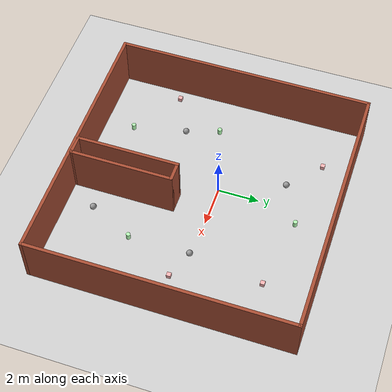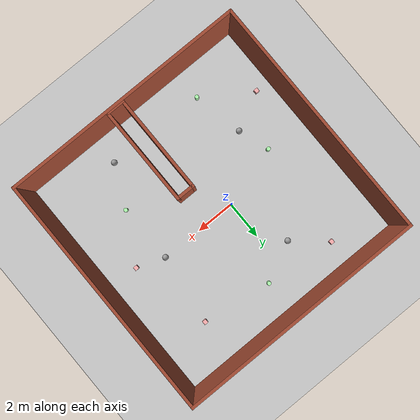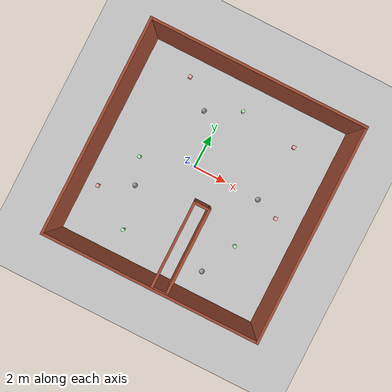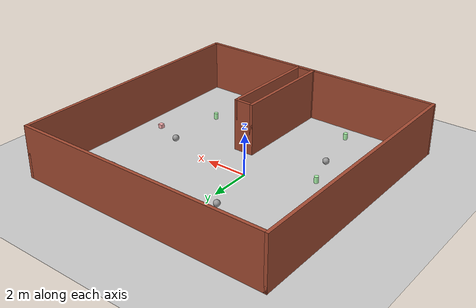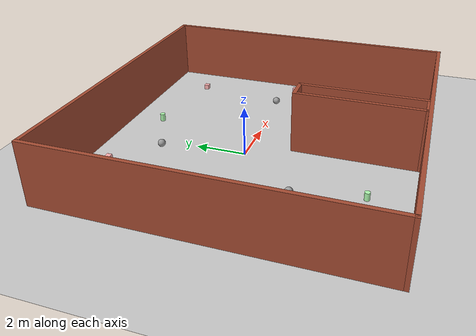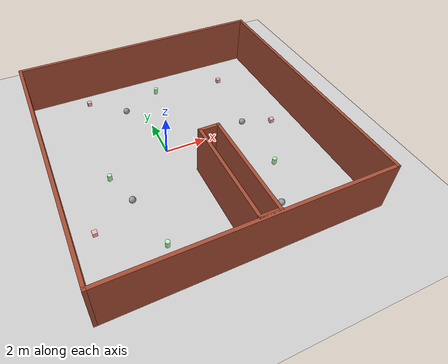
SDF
<sdf version="1.6">
 <world name="default">
  <light name="sun" type="directional">
   <pose>0 0 10 0 -0 0</pose>
   <diffuse>0.8 0.8 0.8 1</diffuse>
   <specular>0.1 0.1 0.1 1</specular>
   <attenuation>
    <range>1000</range>
    <constant>0.9</constant>
    <linear>0.01</linear>
    <quadratic>0.001</quadratic>
   </attenuation>
   <direction>-0.5 0.5 -1</direction>
  </light>
  <model name="ground_plane">
   <static>1</static>
   <link name="link">
    <collision name="collision">
     <geometry><plane><normal>0 0 1</normal><size>100 100</size></plane></geometry>
     <surface><friction><ode><mu>100</mu><mu2>50</mu2></ode></friction></surface>
    </collision>
    <visual name="visual">
     <cast_shadows>0</cast_shadows>
     <geometry><plane><normal>0 0 1</normal><size>100 100</size></plane></geometry>
     <material>
      <script><uri>file://media/materials/scripts/gazebo.material</uri><name>Gazebo/Grey</name></script>
     </material>
    </visual>
   </link>
  </model>
  <gravity>0 0 -9.8</gravity>
  <magnetic_field>6e-06 2.3e-05 -4.2e-05</magnetic_field>
  <atmosphere type="adiabatic"/>
  <physics name="default_physics" default="0" type="ode">
   <max_step_size>0.001</max_step_size>
   <real_time_factor>1</real_time_factor>
   <real_time_update_rate>1000</real_time_update_rate>
  </physics>
  <scene><ambient>0.4 0.4 0.4 1</ambient><background>0.7 0.7 0.7 1</background><shadows>1</shadows></scene>
  <spherical_coordinates>
   <surface_model>EARTH_WGS84</surface_model>
   <latitude_deg>0</latitude_deg>
   <longitude_deg>0</longitude_deg>
   <elevation>0</elevation>
   <heading_deg>0</heading_deg>
  </spherical_coordinates>
  <model name="unit_box_0_1_2">
   <link name="link">
    <inertial>
     <mass>1</mass>
     <inertia>
      <ixx>0.166667</ixx>
      <ixy>0</ixy>
      <ixz>0</ixz>
      <iyy>0.166667</iyy>
      <iyz>0</iyz>
      <izz>0.166667</izz>
     </inertia>
    </inertial>
    <visual name="visual">
     <geometry><box><size>0.2 0.2 0.2</size></box></geometry>
     <material>
      <script><name>Gazebo/Grey</name><uri>file://media/materials/scripts/gazebo.material</uri></script>
      <ambient>1 0.3 0.3 1</ambient>
      <diffuse>1 0.7 0.7 1</diffuse>
      <specular>0.01 0.01 0.01 1</specular>
      <emissive>0 0 0 1</emissive>
      <shader type="vertex"><normal_map>__default__</normal_map></shader>
     </material>
    </visual>
    <collision name="collision">
     <geometry><box><size>1 1 1</size></box></geometry>
     <surface>
      <friction>
       <ode><mu>1</mu><mu2>1</mu2><fdir1>0 0 0</fdir1><slip1>0</slip1><slip2>0</slip2></ode>
       <torsional>
        <coefficient>1</coefficient>
        <patch_radius>0</patch_radius>
        <surface_radius>0</surface_radius>
        <use_patch_radius>1</use_patch_radius>
        <ode><slip>0</slip></ode>
       </torsional>
      </friction>
      <bounce><restitution_coefficient>0</restitution_coefficient><threshold>1e+06</threshold></bounce>
      <contact>
       <collide_without_contact>0</collide_without_contact>
       <collide_without_contact_bitmask>1</collide_without_contact_bitmask>
       <collide_bitmask>1</collide_bitmask>
       <ode>
        <soft_cfm>0</soft_cfm>
        <soft_erp>0.2</soft_erp>
        <kp>1e+13</kp>
        <kd>1</kd>
        <max_vel>0.01</max_vel>
        <min_depth>0</min_depth>
       </ode>
       <bullet>
        <split_impulse>1</split_impulse>
        <split_impulse_penetration_threshold>-0.01</split_impulse_penetration_threshold>
        <soft_cfm>0</soft_cfm>
        <soft_erp>0.2</soft_erp>
        <kp>1e+13</kp>
        <kd>1</kd>
       </bullet>
      </contact>
     </surface>
    </collision>
   </link>
   <static>0</static>
   <pose>5.39737 -0.545213 0.5 0 -0 0</pose>
  </model>
  <model name="unit_box_0_1_2_clone">
   <link name="link">
    <inertial>
     <mass>1</mass>
     <inertia>
      <ixx>0.166667</ixx>
      <ixy>0</ixy>
      <ixz>0</ixz>
      <iyy>0.166667</iyy>
      <iyz>0</iyz>
      <izz>0.166667</izz>
     </inertia>
    </inertial>
    <visual name="visual">
     <geometry><box><size>0.2 0.2 0.2</size></box></geometry>
     <material>
      <script><name>Gazebo/Grey</name><uri>file://media/materials/scripts/gazebo.material</uri></script>
      <ambient>1 0.3 0.3 1</ambient>
      <diffuse>1 0.7 0.7 1</diffuse>
      <specular>0.01 0.01 0.01 1</specular>
      <emissive>0 0 0 1</emissive>
      <shader type="vertex"><normal_map>__default__</normal_map></shader>
     </material>
    </visual>
    <collision name="collision">
     <geometry><box><size>1 1 1</size></box></geometry>
     <surface>
      <friction>
       <ode><mu>1</mu><mu2>1</mu2><fdir1>0 0 0</fdir1><slip1>0</slip1><slip2>0</slip2></ode>
       <torsional>
        <coefficient>1</coefficient>
        <patch_radius>0</patch_radius>
        <surface_radius>0</surface_radius>
        <use_patch_radius>1</use_patch_radius>
        <ode><slip>0</slip></ode>
       </torsional>
      </friction>
      <bounce><restitution_coefficient>0</restitution_coefficient><threshold>1e+06</threshold></bounce>
      <contact>
       <collide_without_contact>0</collide_without_contact>
       <collide_without_contact_bitmask>1</collide_without_contact_bitmask>
       <collide_bitmask>1</collide_bitmask>
       <ode>
        <soft_cfm>0</soft_cfm>
        <soft_erp>0.2</soft_erp>
        <kp>1e+13</kp>
        <kd>1</kd>
        <max_vel>0.01</max_vel>
        <min_depth>0</min_depth>
       </ode>
       <bullet>
        <split_impulse>1</split_impulse>
        <split_impulse_penetration_threshold>-0.01</split_impulse_penetration_threshold>
        <soft_cfm>0</soft_cfm>
        <soft_erp>0.2</soft_erp>
        <kp>1e+13</kp>
        <kd>1</kd>
       </bullet>
      </contact>
     </surface>
    </collision>
   </link>
   <static>0</static>
   <pose>4.49368 3.49888 0.5 0 -0 0</pose>
  </model>
  <model name="unit_box_0_1_2_clone_0">
   <link name="link">
    <inertial>
     <mass>1</mass>
     <inertia>
      <ixx>0.166667</ixx>
      <ixy>0</ixy>
      <ixz>0</ixz>
      <iyy>0.166667</iyy>
      <iyz>0</iyz>
      <izz>0.166667</izz>
     </inertia>
    </inertial>
    <visual name="visual">
     <geometry><box><size>0.2 0.2 0.2</size></box></geometry>
     <material>
      <script><name>Gazebo/Grey</name><uri>file://media/materials/scripts/gazebo.material</uri></script>
      <ambient>1 0.3 0.3 1</ambient>
      <diffuse>1 0.7 0.7 1</diffuse>
      <specular>0.01 0.01 0.01 1</specular>
      <emissive>0 0 0 1</emissive>
      <shader type="vertex"><normal_map>__default__</normal_map></shader>
     </material>
    </visual>
    <collision name="collision">
     <geometry><box><size>1 1 1</size></box></geometry>
     <surface>
      <friction>
       <ode><mu>1</mu><mu2>1</mu2><fdir1>0 0 0</fdir1><slip1>0</slip1><slip2>0</slip2></ode>
       <torsional>
        <coefficient>1</coefficient>
        <patch_radius>0</patch_radius>
        <surface_radius>0</surface_radius>
        <use_patch_radius>1</use_patch_radius>
        <ode><slip>0</slip></ode>
       </torsional>
      </friction>
      <bounce><restitution_coefficient>0</restitution_coefficient><threshold>1e+06</threshold></bounce>
      <contact>
       <collide_without_contact>0</collide_without_contact>
       <collide_without_contact_bitmask>1</collide_without_contact_bitmask>
       <collide_bitmask>1</collide_bitmask>
       <ode>
        <soft_cfm>0</soft_cfm>
        <soft_erp>0.2</soft_erp>
        <kp>1e+13</kp>
        <kd>1</kd>
        <max_vel>0.01</max_vel>
        <min_depth>0</min_depth>
       </ode>
       <bullet>
        <split_impulse>1</split_impulse>
        <split_impulse_penetration_threshold>-0.01</split_impulse_penetration_threshold>
        <soft_cfm>0</soft_cfm>
        <soft_erp>0.2</soft_erp>
        <kp>1e+13</kp>
        <kd>1</kd>
       </bullet>
      </contact>
     </surface>
    </collision>
   </link>
   <static>0</static>
   <pose>-4.41359 -3.42337 0.5 0 -0 0</pose>
  </model>
  <model name="unit_box_0_1_2_clone_1">
   <link name="link">
    <inertial>
     <mass>1</mass>
     <inertia>
      <ixx>0.166667</ixx>
      <ixy>0</ixy>
      <ixz>0</ixz>
      <iyy>0.166667</iyy>
      <iyz>0</iyz>
      <izz>0.166667</izz>
     </inertia>
    </inertial>
    <visual name="visual">
     <geometry><box><size>0.2 0.2 0.2</size></box></geometry>
     <material>
      <script><name>Gazebo/Grey</name><uri>file://media/materials/scripts/gazebo.material</uri></script>
      <ambient>1 0.3 0.3 1</ambient>
      <diffuse>1 0.7 0.7 1</diffuse>
      <specular>0.01 0.01 0.01 1</specular>
      <emissive>0 0 0 1</emissive>
      <shader type="vertex"><normal_map>__default__</normal_map></shader>
     </material>
    </visual>
    <collision name="collision">
     <geometry><box><size>1 1 1</size></box></geometry>
     <surface>
      <friction>
       <ode><mu>1</mu><mu2>1</mu2><fdir1>0 0 0</fdir1><slip1>0</slip1><slip2>0</slip2></ode>
       <torsional>
        <coefficient>1</coefficient>
        <patch_radius>0</patch_radius>
        <surface_radius>0</surface_radius>
        <use_patch_radius>1</use_patch_radius>
        <ode><slip>0</slip></ode>
       </torsional>
      </friction>
      <bounce><restitution_coefficient>0</restitution_coefficient><threshold>1e+06</threshold></bounce>
      <contact>
       <collide_without_contact>0</collide_without_contact>
       <collide_without_contact_bitmask>1</collide_without_contact_bitmask>
       <collide_bitmask>1</collide_bitmask>
       <ode>
        <soft_cfm>0</soft_cfm>
        <soft_erp>0.2</soft_erp>
        <kp>1e+13</kp>
        <kd>1</kd>
        <max_vel>0.01</max_vel>
        <min_depth>0</min_depth>
       </ode>
       <bullet>
        <split_impulse>1</split_impulse>
        <split_impulse_penetration_threshold>-0.01</split_impulse_penetration_threshold>
        <soft_cfm>0</soft_cfm>
        <soft_erp>0.2</soft_erp>
        <kp>1e+13</kp>
        <kd>1</kd>
       </bullet>
      </contact>
     </surface>
    </collision>
   </link>
   <static>0</static>
   <pose>-2.53727 4.40787 0.5 0 -0 0</pose>
  </model>
  <model name="unit_cyclider_1_0">
   <link name="link_0">
    <pose>0 0 0.165143 0 -0 0</pose>
    <inertial>
     <mass>1</mass>
     <inertia><ixx>0.145833</ixx><ixy>0</ixy><ixz>0</ixz><iyy>0.145833</iyy><iyz>0</iyz><izz>0.125</izz></inertia>
    </inertial>
    <visual name="visual">
     <geometry><cylinder><radius>0.1</radius><length>0.3</length></cylinder></geometry>
     <material>
      <lighting>1</lighting>
      <script><uri>file://media/materials/scripts/gazebo.material</uri><name>Gazebo/Grey</name></script>
      <ambient>0.3 1 0.3 1</ambient>
      <diffuse>0.7 1 0.7 1</diffuse>
      <specular>0.01 0.01 0.01 1</specular>
      <emissive>0 0 0 1</emissive>
      <shader type="vertex"><normal_map>__default__</normal_map></shader>
     </material>
    </visual>
    <collision name="collision">
     <geometry><cylinder><radius>0.5</radius><length>1</length></cylinder></geometry>
     <surface>
      <friction>
       <ode><mu>1</mu><mu2>1</mu2><fdir1>0 0 0</fdir1><slip1>0</slip1><slip2>0</slip2></ode>
       <torsional>
        <coefficient>1</coefficient>
        <patch_radius>0</patch_radius>
        <surface_radius>0</surface_radius>
        <use_patch_radius>1</use_patch_radius>
        <ode><slip>0</slip></ode>
       </torsional>
      </friction>
      <bounce><restitution_coefficient>0</restitution_coefficient><threshold>1e+06</threshold></bounce>
      <contact>
       <collide_without_contact>0</collide_without_contact>
       <collide_without_contact_bitmask>1</collide_without_contact_bitmask>
       <collide_bitmask>1</collide_bitmask>
       <ode>
        <soft_cfm>0</soft_cfm>
        <soft_erp>0.2</soft_erp>
        <kp>1e+13</kp>
        <kd>1</kd>
        <max_vel>0.01</max_vel>
        <min_depth>0</min_depth>
       </ode>
       <bullet>
        <split_impulse>1</split_impulse>
        <split_impulse_penetration_threshold>-0.01</split_impulse_penetration_threshold>
        <soft_cfm>0</soft_cfm>
        <soft_erp>0.2</soft_erp>
        <kp>1e+13</kp>
        <kd>1</kd>
       </bullet>
      </contact>
     </surface>
    </collision>
   </link>
   <static>0</static>
   <pose>-3.05013 -0.907203 0.334857 0 -0 0</pose>
  </model>
  <model name="unit_cyclider_1_0_clone">
   <link name="link_0">
    <pose>0 0 0.165143 0 -0 0</pose>
    <inertial>
     <mass>1</mass>
     <inertia><ixx>0.145833</ixx><ixy>0</ixy><ixz>0</ixz><iyy>0.145833</iyy><iyz>0</iyz><izz>0.125</izz></inertia>
    </inertial>
    <visual name="visual">
     <geometry><cylinder><radius>0.1</radius><length>0.3</length></cylinder></geometry>
     <material>
      <lighting>1</lighting>
      <script><uri>file://media/materials/scripts/gazebo.material</uri><name>Gazebo/Grey</name></script>
      <ambient>0.3 1 0.3 1</ambient>
      <diffuse>0.7 1 0.7 1</diffuse>
      <specular>0.01 0.01 0.01 1</specular>
      <emissive>0 0 0 1</emissive>
      <shader type="vertex"><normal_map>__default__</normal_map></shader>
     </material>
    </visual>
    <collision name="collision">
     <geometry><cylinder><radius>0.5</radius><length>1</length></cylinder></geometry>
     <surface>
      <friction>
       <ode><mu>1</mu><mu2>1</mu2><fdir1>0 0 0</fdir1><slip1>0</slip1><slip2>0</slip2></ode>
       <torsional>
        <coefficient>1</coefficient>
        <patch_radius>0</patch_radius>
        <surface_radius>0</surface_radius>
        <use_patch_radius>1</use_patch_radius>
        <ode><slip>0</slip></ode>
       </torsional>
      </friction>
      <bounce><restitution_coefficient>0</restitution_coefficient><threshold>1e+06</threshold></bounce>
      <contact>
       <collide_without_contact>0</collide_without_contact>
       <collide_without_contact_bitmask>1</collide_without_contact_bitmask>
       <collide_bitmask>1</collide_bitmask>
       <ode>
        <soft_cfm>0</soft_cfm>
        <soft_erp>0.2</soft_erp>
        <kp>1e+13</kp>
        <kd>1</kd>
        <max_vel>0.01</max_vel>
        <min_depth>0</min_depth>
       </ode>
       <bullet>
        <split_impulse>1</split_impulse>
        <split_impulse_penetration_threshold>-0.01</split_impulse_penetration_threshold>
        <soft_cfm>0</soft_cfm>
        <soft_erp>0.2</soft_erp>
        <kp>1e+13</kp>
        <kd>1</kd>
       </bullet>
      </contact>
     </surface>
    </collision>
   </link>
   <static>0</static>
   <pose>4.04118 -2.98346 0.334857 0 -0 0</pose>
  </model>
  <model name="unit_cyclider_1_0_clone_0">
   <link name="link_0">
    <pose>0 0 0.165143 0 -0 0</pose>
    <inertial>
     <mass>1</mass>
     <inertia><ixx>0.145833</ixx><ixy>0</ixy><ixz>0</ixz><iyy>0.145833</iyy><iyz>0</iyz><izz>0.125</izz></inertia>
    </inertial>
    <visual name="visual">
     <geometry><cylinder><radius>0.1</radius><length>0.3</length></cylinder></geometry>
     <material>
      <lighting>1</lighting>
      <script><uri>file://media/materials/scripts/gazebo.material</uri><name>Gazebo/Grey</name></script>
      <ambient>0.3 1 0.3 1</ambient>
      <diffuse>0.7 1 0.7 1</diffuse>
      <specular>0.01 0.01 0.01 1</specular>
      <emissive>0 0 0 1</emissive>
      <shader type="vertex"><normal_map>__default__</normal_map></shader>
     </material>
    </visual>
    <collision name="collision">
     <geometry><cylinder><radius>0.5</radius><length>1</length></cylinder></geometry>
     <surface>
      <friction>
       <ode><mu>1</mu><mu2>1</mu2><fdir1>0 0 0</fdir1><slip1>0</slip1><slip2>0</slip2></ode>
       <torsional>
        <coefficient>1</coefficient>
        <patch_radius>0</patch_radius>
        <surface_radius>0</surface_radius>
        <use_patch_radius>1</use_patch_radius>
        <ode><slip>0</slip></ode>
       </torsional>
      </friction>
      <bounce><restitution_coefficient>0</restitution_coefficient><threshold>1e+06</threshold></bounce>
      <contact>
       <collide_without_contact>0</collide_without_contact>
       <collide_without_contact_bitmask>1</collide_without_contact_bitmask>
       <collide_bitmask>1</collide_bitmask>
       <ode>
        <soft_cfm>0</soft_cfm>
        <soft_erp>0.2</soft_erp>
        <kp>1e+13</kp>
        <kd>1</kd>
        <max_vel>0.01</max_vel>
        <min_depth>0</min_depth>
       </ode>
       <bullet>
        <split_impulse>1</split_impulse>
        <split_impulse_penetration_threshold>-0.01</split_impulse_penetration_threshold>
        <soft_cfm>0</soft_cfm>
        <soft_erp>0.2</soft_erp>
        <kp>1e+13</kp>
        <kd>1</kd>
       </bullet>
      </contact>
     </surface>
    </collision>
   </link>
   <static>0</static>
   <pose>1.00892 4.02012 0.334857 0 -0 0</pose>
  </model>
  <model name="unit_cyclider_1_0_clone_1">
   <link name="link_0">
    <pose>0 0 0.165143 0 -0 0</pose>
    <inertial>
     <mass>1</mass>
     <inertia><ixx>0.145833</ixx><ixy>0</ixy><ixz>0</ixz><iyy>0.145833</iyy><iyz>0</iyz><izz>0.125</izz></inertia>
    </inertial>
    <visual name="visual">
     <geometry><cylinder><radius>0.1</radius><length>0.3</length></cylinder></geometry>
     <material>
      <lighting>1</lighting>
      <script><uri>file://media/materials/scripts/gazebo.material</uri><name>Gazebo/Grey</name></script>
      <ambient>0.3 1 0.3 1</ambient>
      <diffuse>0.7 1 0.7 1</diffuse>
      <specular>0.01 0.01 0.01 1</specular>
      <emissive>0 0 0 1</emissive>
      <shader type="vertex"><normal_map>__default__</normal_map></shader>
     </material>
    </visual>
    <collision name="collision">
     <geometry><cylinder><radius>0.5</radius><length>1</length></cylinder></geometry>
     <surface>
      <friction>
       <ode><mu>1</mu><mu2>1</mu2><fdir1>0 0 0</fdir1><slip1>0</slip1><slip2>0</slip2></ode>
       <torsional>
        <coefficient>1</coefficient>
        <patch_radius>0</patch_radius>
        <surface_radius>0</surface_radius>
        <use_patch_radius>1</use_patch_radius>
        <ode><slip>0</slip></ode>
       </torsional>
      </friction>
      <bounce><restitution_coefficient>0</restitution_coefficient><threshold>1e+06</threshold></bounce>
      <contact>
       <collide_without_contact>0</collide_without_contact>
       <collide_without_contact_bitmask>1</collide_without_contact_bitmask>
       <collide_bitmask>1</collide_bitmask>
       <ode>
        <soft_cfm>0</soft_cfm>
        <soft_erp>0.2</soft_erp>
        <kp>1e+13</kp>
        <kd>1</kd>
        <max_vel>0.01</max_vel>
        <min_depth>0</min_depth>
       </ode>
       <bullet>
        <split_impulse>1</split_impulse>
        <split_impulse_penetration_threshold>-0.01</split_impulse_penetration_threshold>
        <soft_cfm>0</soft_cfm>
        <soft_erp>0.2</soft_erp>
        <kp>1e+13</kp>
        <kd>1</kd>
       </bullet>
      </contact>
     </surface>
    </collision>
   </link>
   <static>0</static>
   <pose>-2.00668 -5.00298 0.334857 0 -0 0</pose>
  </model>
  <model name="unit_sphere_0_1">
   <link name="link">
    <inertial>
     <mass>1</mass>
     <inertia><ixx>0.1</ixx><ixy>0</ixy><ixz>0</ixz><iyy>0.1</iyy><iyz>0</iyz><izz>0.1</izz></inertia>
    </inertial>
    <visual name="visual">
     <geometry><sphere><radius>0.15</radius></sphere></geometry>
     <material>
      <script><name>Gazebo/Grey</name><uri>file://media/materials/scripts/gazebo.material</uri></script>
      <ambient>0.3 0.3 0.3 1</ambient>
      <diffuse>0.7 0.7 0.7 1</diffuse>
      <specular>0.01 0.01 0.01 1</specular>
      <emissive>0 0 0 1</emissive>
      <shader type="vertex"><normal_map>__default__</normal_map></shader>
     </material>
    </visual>
    <collision name="collision">
     <geometry><sphere><radius>0.5</radius></sphere></geometry>
     <surface>
      <friction>
       <ode><mu>1</mu><mu2>1</mu2><fdir1>0 0 0</fdir1><slip1>0</slip1><slip2>0</slip2></ode>
       <torsional>
        <coefficient>1</coefficient>
        <patch_radius>0</patch_radius>
        <surface_radius>0</surface_radius>
        <use_patch_radius>1</use_patch_radius>
        <ode><slip>0</slip></ode>
       </torsional>
      </friction>
      <bounce><restitution_coefficient>0</restitution_coefficient><threshold>1e+06</threshold></bounce>
      <contact>
       <collide_without_contact>0</collide_without_contact>
       <collide_without_contact_bitmask>1</collide_without_contact_bitmask>
       <collide_bitmask>1</collide_bitmask>
       <ode>
        <soft_cfm>0</soft_cfm>
        <soft_erp>0.2</soft_erp>
        <kp>1e+13</kp>
        <kd>1</kd>
        <max_vel>0.01</max_vel>
        <min_depth>0</min_depth>
       </ode>
       <bullet>
        <split_impulse>1</split_impulse>
        <split_impulse_penetration_threshold>-0.01</split_impulse_penetration_threshold>
        <soft_cfm>0</soft_cfm>
        <soft_erp>0.2</soft_erp>
        <kp>1e+13</kp>
        <kd>1</kd>
       </bullet>
      </contact>
     </surface>
    </collision>
   </link>
   <static>0</static>
   <pose>-2.54072 -2.46962 0.5 0 -0 0</pose>
  </model>
  <model name="unit_sphere_0_1_clone">
   <link name="link">
    <inertial>
     <mass>1</mass>
     <inertia><ixx>0.1</ixx><ixy>0</ixy><ixz>0</ixz><iyy>0.1</iyy><iyz>0</iyz><izz>0.1</izz></inertia>
    </inertial>
    <visual name="visual">
     <geometry><sphere><radius>0.15</radius></sphere></geometry>
     <material>
      <script><name>Gazebo/Grey</name><uri>file://media/materials/scripts/gazebo.material</uri></script>
      <ambient>0.3 0.3 0.3 1</ambient>
      <diffuse>0.7 0.7 0.7 1</diffuse>
      <specular>0.01 0.01 0.01 1</specular>
      <emissive>0 0 0 1</emissive>
      <shader type="vertex"><normal_map>__default__</normal_map></shader>
     </material>
    </visual>
    <collision name="collision">
     <geometry><sphere><radius>0.5</radius></sphere></geometry>
     <surface>
      <friction>
       <ode><mu>1</mu><mu2>1</mu2><fdir1>0 0 0</fdir1><slip1>0</slip1><slip2>0</slip2></ode>
       <torsional>
        <coefficient>1</coefficient>
        <patch_radius>0</patch_radius>
        <surface_radius>0</surface_radius>
        <use_patch_radius>1</use_patch_radius>
        <ode><slip>0</slip></ode>
       </torsional>
      </friction>
      <bounce><restitution_coefficient>0</restitution_coefficient><threshold>1e+06</threshold></bounce>
      <contact>
       <collide_without_contact>0</collide_without_contact>
       <collide_without_contact_bitmask>1</collide_without_contact_bitmask>
       <collide_bitmask>1</collide_bitmask>
       <ode>
        <soft_cfm>0</soft_cfm>
        <soft_erp>0.2</soft_erp>
        <kp>1e+13</kp>
        <kd>1</kd>
        <max_vel>0.01</max_vel>
        <min_depth>0</min_depth>
       </ode>
       <bullet>
        <split_impulse>1</split_impulse>
        <split_impulse_penetration_threshold>-0.01</split_impulse_penetration_threshold>
        <soft_cfm>0</soft_cfm>
        <soft_erp>0.2</soft_erp>
        <kp>1e+13</kp>
        <kd>1</kd>
       </bullet>
      </contact>
     </surface>
    </collision>
   </link>
   <static>0</static>
   <pose>3.03705 -5.10186 0.5 0 -0 0</pose>
  </model>
  <model name="unit_sphere_0_1_clone_0">
   <link name="link">
    <inertial>
     <mass>1</mass>
     <inertia><ixx>0.1</ixx><ixy>0</ixy><ixz>0</ixz><iyy>0.1</iyy><iyz>0</iyz><izz>0.1</izz></inertia>
    </inertial>
    <visual name="visual">
     <geometry><sphere><radius>0.15</radius></sphere></geometry>
     <material>
      <script><name>Gazebo/Grey</name><uri>file://media/materials/scripts/gazebo.material</uri></script>
      <ambient>0.3 0.3 0.3 1</ambient>
      <diffuse>0.7 0.7 0.7 1</diffuse>
      <specular>0.01 0.01 0.01 1</specular>
      <emissive>0 0 0 1</emissive>
      <shader type="vertex"><normal_map>__default__</normal_map></shader>
     </material>
    </visual>
    <collision name="collision">
     <geometry><sphere><radius>0.5</radius></sphere></geometry>
     <surface>
      <friction>
       <ode><mu>1</mu><mu2>1</mu2><fdir1>0 0 0</fdir1><slip1>0</slip1><slip2>0</slip2></ode>
       <torsional>
        <coefficient>1</coefficient>
        <patch_radius>0</patch_radius>
        <surface_radius>0</surface_radius>
        <use_patch_radius>1</use_patch_radius>
        <ode><slip>0</slip></ode>
       </torsional>
      </friction>
      <bounce><restitution_coefficient>0</restitution_coefficient><threshold>1e+06</threshold></bounce>
      <contact>
       <collide_without_contact>0</collide_without_contact>
       <collide_without_contact_bitmask>1</collide_without_contact_bitmask>
       <collide_bitmask>1</collide_bitmask>
       <ode>
        <soft_cfm>0</soft_cfm>
        <soft_erp>0.2</soft_erp>
        <kp>1e+13</kp>
        <kd>1</kd>
        <max_vel>0.01</max_vel>
        <min_depth>0</min_depth>
       </ode>
       <bullet>
        <split_impulse>1</split_impulse>
        <split_impulse_penetration_threshold>-0.01</split_impulse_penetration_threshold>
        <soft_cfm>0</soft_cfm>
        <soft_erp>0.2</soft_erp>
        <kp>1e+13</kp>
        <kd>1</kd>
       </bullet>
      </contact>
     </surface>
    </collision>
   </link>
   <static>0</static>
   <pose>4.02128 -0.048106 0.5 0 -0 0</pose>
  </model>
  <model name="unit_sphere_0_1_clone_1">
   <link name="link">
    <inertial>
     <mass>1</mass>
     <inertia><ixx>0.1</ixx><ixy>0</ixy><ixz>0</ixz><iyy>0.1</iyy><iyz>0</iyz><izz>0.1</izz></inertia>
    </inertial>
    <visual name="visual">
     <geometry><sphere><radius>0.15</radius></sphere></geometry>
     <material>
      <script><name>Gazebo/Grey</name><uri>file://media/materials/scripts/gazebo.material</uri></script>
      <ambient>0.3 0.3 0.3 1</ambient>
      <diffuse>0.7 0.7 0.7 1</diffuse>
      <specular>0.01 0.01 0.01 1</specular>
      <emissive>0 0 0 1</emissive>
      <shader type="vertex"><normal_map>__default__</normal_map></shader>
     </material>
    </visual>
    <collision name="collision">
     <geometry><sphere><radius>0.5</radius></sphere></geometry>
     <surface>
      <friction>
       <ode><mu>1</mu><mu2>1</mu2><fdir1>0 0 0</fdir1><slip1>0</slip1><slip2>0</slip2></ode>
       <torsional>
        <coefficient>1</coefficient>
        <patch_radius>0</patch_radius>
        <surface_radius>0</surface_radius>
        <use_patch_radius>1</use_patch_radius>
        <ode><slip>0</slip></ode>
       </torsional>
      </friction>
      <bounce><restitution_coefficient>0</restitution_coefficient><threshold>1e+06</threshold></bounce>
      <contact>
       <collide_without_contact>0</collide_without_contact>
       <collide_without_contact_bitmask>1</collide_without_contact_bitmask>
       <collide_bitmask>1</collide_bitmask>
       <ode>
        <soft_cfm>0</soft_cfm>
        <soft_erp>0.2</soft_erp>
        <kp>1e+13</kp>
        <kd>1</kd>
        <max_vel>0.01</max_vel>
        <min_depth>0</min_depth>
       </ode>
       <bullet>
        <split_impulse>1</split_impulse>
        <split_impulse_penetration_threshold>-0.01</split_impulse_penetration_threshold>
        <soft_cfm>0</soft_cfm>
        <soft_erp>0.2</soft_erp>
        <kp>1e+13</kp>
        <kd>1</kd>
       </bullet>
      </contact>
     </surface>
    </collision>
   </link>
   <static>0</static>
   <pose>-0.968265 3.04979 0.5 0 -0 0</pose>
  </model>
  <model name="Floor_Plan_Proj_0">
   <link name="Wall_23">
    <pose>-6.175 0 0 0 -0 1.5708</pose>
    <visual name="Wall_23_Visual">
     <pose>0 0 1.25 0 -0 0</pose>
     <geometry><box><size>12.5 0.15 2.5</size></box></geometry>
     <material>
      <script><uri>file://media/materials/scripts/gazebo.material</uri><name>Gazebo/Bricks</name></script>
      <ambient>1 1 1 1</ambient>
      <diffuse>1 1 1 1</diffuse>
      <specular>0.2 0.2 0.2 1</specular>
      <emissive>0 0 0 1</emissive>
     </material>
    </visual>
    <collision name="Wall_23_Collision">
     <pose>0 0 1.25 0 -0 0</pose>
     <geometry><box><size>12.5 0.15 2.5</size></box></geometry>
     <surface>
      <friction>
       <ode><mu>1</mu><mu2>1</mu2><fdir1>0 0 0</fdir1><slip1>0</slip1><slip2>0</slip2></ode>
       <torsional>
        <coefficient>1</coefficient>
        <patch_radius>0</patch_radius>
        <surface_radius>0</surface_radius>
        <use_patch_radius>1</use_patch_radius>
        <ode><slip>0</slip></ode>
       </torsional>
      </friction>
      <bounce><restitution_coefficient>0</restitution_coefficient><threshold>1e+06</threshold></bounce>
      <contact>
       <collide_without_contact>0</collide_without_contact>
       <collide_without_contact_bitmask>1</collide_without_contact_bitmask>
       <collide_bitmask>1</collide_bitmask>
       <ode>
        <soft_cfm>0</soft_cfm>
        <soft_erp>0.2</soft_erp>
        <kp>1e+13</kp>
        <kd>1</kd>
        <max_vel>0.01</max_vel>
        <min_depth>0</min_depth>
       </ode>
       <bullet>
        <split_impulse>1</split_impulse>
        <split_impulse_penetration_threshold>-0.01</split_impulse_penetration_threshold>
        <soft_cfm>0</soft_cfm>
        <soft_erp>0.2</soft_erp>
        <kp>1e+13</kp>
        <kd>1</kd>
       </bullet>
      </contact>
     </surface>
    </collision>
   </link>
   <link name="Wall_24">
    <pose>0 6.175 0 0 -0 0</pose>
    <visual name="Wall_24_Visual">
     <pose>0 0 1.25 0 -0 0</pose>
     <geometry><box><size>12.5 0.15 2.5</size></box></geometry>
     <material>
      <script><uri>file://media/materials/scripts/gazebo.material</uri><name>Gazebo/Bricks</name></script>
      <ambient>1 1 1 1</ambient>
      <diffuse>1 1 1 1</diffuse>
      <specular>0.2 0.2 0.2 1</specular>
      <emissive>0 0 0 1</emissive>
     </material>
    </visual>
    <collision name="Wall_24_Collision">
     <pose>0 0 1.25 0 -0 0</pose>
     <geometry><box><size>12.5 0.15 2.5</size></box></geometry>
     <surface>
      <friction>
       <ode><mu>1</mu><mu2>1</mu2><fdir1>0 0 0</fdir1><slip1>0</slip1><slip2>0</slip2></ode>
       <torsional>
        <coefficient>1</coefficient>
        <patch_radius>0</patch_radius>
        <surface_radius>0</surface_radius>
        <use_patch_radius>1</use_patch_radius>
        <ode><slip>0</slip></ode>
       </torsional>
      </friction>
      <bounce><restitution_coefficient>0</restitution_coefficient><threshold>1e+06</threshold></bounce>
      <contact>
       <collide_without_contact>0</collide_without_contact>
       <collide_without_contact_bitmask>1</collide_without_contact_bitmask>
       <collide_bitmask>1</collide_bitmask>
       <ode>
        <soft_cfm>0</soft_cfm>
        <soft_erp>0.2</soft_erp>
        <kp>1e+13</kp>
        <kd>1</kd>
        <max_vel>0.01</max_vel>
        <min_depth>0</min_depth>
       </ode>
       <bullet>
        <split_impulse>1</split_impulse>
        <split_impulse_penetration_threshold>-0.01</split_impulse_penetration_threshold>
        <soft_cfm>0</soft_cfm>
        <soft_erp>0.2</soft_erp>
        <kp>1e+13</kp>
        <kd>1</kd>
       </bullet>
      </contact>
     </surface>
    </collision>
   </link>
   <link name="Wall_25">
    <pose>6.175 0 0 0 0 -1.5708</pose>
    <visual name="Wall_25_Visual">
     <pose>0 0 1.25 0 -0 0</pose>
     <geometry><box><size>12.5 0.15 2.5</size></box></geometry>
     <material>
      <script><uri>file://media/materials/scripts/gazebo.material</uri><name>Gazebo/Bricks</name></script>
      <ambient>1 1 1 1</ambient>
      <diffuse>1 1 1 1</diffuse>
      <specular>0.2 0.2 0.2 1</specular>
      <emissive>0 0 0 1</emissive>
     </material>
    </visual>
    <collision name="Wall_25_Collision">
     <pose>0 0 1.25 0 -0 0</pose>
     <geometry><box><size>12.5 0.15 2.5</size></box></geometry>
     <surface>
      <friction>
       <ode><mu>1</mu><mu2>1</mu2><fdir1>0 0 0</fdir1><slip1>0</slip1><slip2>0</slip2></ode>
       <torsional>
        <coefficient>1</coefficient>
        <patch_radius>0</patch_radius>
        <surface_radius>0</surface_radius>
        <use_patch_radius>1</use_patch_radius>
        <ode><slip>0</slip></ode>
       </torsional>
      </friction>
      <bounce><restitution_coefficient>0</restitution_coefficient><threshold>1e+06</threshold></bounce>
      <contact>
       <collide_without_contact>0</collide_without_contact>
       <collide_without_contact_bitmask>1</collide_without_contact_bitmask>
       <collide_bitmask>1</collide_bitmask>
       <ode>
        <soft_cfm>0</soft_cfm>
        <soft_erp>0.2</soft_erp>
        <kp>1e+13</kp>
        <kd>1</kd>
        <max_vel>0.01</max_vel>
        <min_depth>0</min_depth>
       </ode>
       <bullet>
        <split_impulse>1</split_impulse>
        <split_impulse_penetration_threshold>-0.01</split_impulse_penetration_threshold>
        <soft_cfm>0</soft_cfm>
        <soft_erp>0.2</soft_erp>
        <kp>1e+13</kp>
        <kd>1</kd>
       </bullet>
      </contact>
     </surface>
    </collision>
   </link>
   <link name="Wall_26">
    <pose>0 -6.175 0 0 -0 3.14159</pose>
    <visual name="Wall_26_Visual">
     <pose>0 0 1.25 0 -0 0</pose>
     <geometry><box><size>12.5 0.15 2.5</size></box></geometry>
     <material>
      <script><uri>file://media/materials/scripts/gazebo.material</uri><name>Gazebo/Bricks</name></script>
      <ambient>1 1 1 1</ambient>
      <diffuse>1 1 1 1</diffuse>
      <specular>0.2 0.2 0.2 1</specular>
      <emissive>0 0 0 1</emissive>
     </material>
    </visual>
    <collision name="Wall_26_Collision">
     <pose>0 0 1.25 0 -0 0</pose>
     <geometry><box><size>12.5 0.15 2.5</size></box></geometry>
     <surface>
      <friction>
       <ode><mu>1</mu><mu2>1</mu2><fdir1>0 0 0</fdir1><slip1>0</slip1><slip2>0</slip2></ode>
       <torsional>
        <coefficient>1</coefficient>
        <patch_radius>0</patch_radius>
        <surface_radius>0</surface_radius>
        <use_patch_radius>1</use_patch_radius>
        <ode><slip>0</slip></ode>
       </torsional>
      </friction>
      <bounce><restitution_coefficient>0</restitution_coefficient><threshold>1e+06</threshold></bounce>
      <contact>
       <collide_without_contact>0</collide_without_contact>
       <collide_without_contact_bitmask>1</collide_without_contact_bitmask>
       <collide_bitmask>1</collide_bitmask>
       <ode>
        <soft_cfm>0</soft_cfm>
        <soft_erp>0.2</soft_erp>
        <kp>1e+13</kp>
        <kd>1</kd>
        <max_vel>0.01</max_vel>
        <min_depth>0</min_depth>
       </ode>
       <bullet>
        <split_impulse>1</split_impulse>
        <split_impulse_penetration_threshold>-0.01</split_impulse_penetration_threshold>
        <soft_cfm>0</soft_cfm>
        <soft_erp>0.2</soft_erp>
        <kp>1e+13</kp>
        <kd>1</kd>
       </bullet>
      </contact>
     </surface>
    </collision>
   </link>
   <link name="Wall_33">
    <pose>0.07 -3.658 0 0 -0 1.5708</pose>
    <visual name="Wall_33_Visual">
     <pose>0 0 1.25 0 -0 0</pose>
     <geometry><box><size>5 0.15 2.5</size></box></geometry>
     <material>
      <script><uri>file://media/materials/scripts/gazebo.material</uri><name>Gazebo/Bricks</name></script>
      <ambient>1 1 1 1</ambient>
      <diffuse>1 1 1 1</diffuse>
      <specular>0.2 0.2 0.2 1</specular>
      <emissive>0 0 0 1</emissive>
     </material>
    </visual>
    <collision name="Wall_33_Collision">
     <pose>0 0 1.25 0 -0 0</pose>
     <geometry><box><size>5 0.15 2.5</size></box></geometry>
     <surface>
      <friction>
       <ode><mu>1</mu><mu2>1</mu2><fdir1>0 0 0</fdir1><slip1>0</slip1><slip2>0</slip2></ode>
       <torsional>
        <coefficient>1</coefficient>
        <patch_radius>0</patch_radius>
        <surface_radius>0</surface_radius>
        <use_patch_radius>1</use_patch_radius>
        <ode><slip>0</slip></ode>
       </torsional>
      </friction>
      <bounce><restitution_coefficient>0</restitution_coefficient><threshold>1e+06</threshold></bounce>
      <contact>
       <collide_without_contact>0</collide_without_contact>
       <collide_without_contact_bitmask>1</collide_without_contact_bitmask>
       <collide_bitmask>1</collide_bitmask>
       <ode>
        <soft_cfm>0</soft_cfm>
        <soft_erp>0.2</soft_erp>
        <kp>1e+13</kp>
        <kd>1</kd>
        <max_vel>0.01</max_vel>
        <min_depth>0</min_depth>
       </ode>
       <bullet>
        <split_impulse>1</split_impulse>
        <split_impulse_penetration_threshold>-0.01</split_impulse_penetration_threshold>
        <soft_cfm>0</soft_cfm>
        <soft_erp>0.2</soft_erp>
        <kp>1e+13</kp>
        <kd>1</kd>
       </bullet>
      </contact>
     </surface>
    </collision>
   </link>
   <link name="Wall_34">
    <pose>0.495 -1.233 0 0 -0 0</pose>
    <visual name="Wall_34_Visual">
     <pose>0 0 1.25 0 -0 0</pose>
     <geometry><box><size>1 0.15 2.5</size></box></geometry>
     <material>
      <script><uri>file://media/materials/scripts/gazebo.material</uri><name>Gazebo/Bricks</name></script>
      <ambient>1 1 1 1</ambient>
      <diffuse>1 1 1 1</diffuse>
      <specular>0.2 0.2 0.2 1</specular>
      <emissive>0 0 0 1</emissive>
     </material>
    </visual>
    <collision name="Wall_34_Collision">
     <pose>0 0 1.25 0 -0 0</pose>
     <geometry><box><size>1 0.15 2.5</size></box></geometry>
     <surface>
      <friction>
       <ode><mu>1</mu><mu2>1</mu2><fdir1>0 0 0</fdir1><slip1>0</slip1><slip2>0</slip2></ode>
       <torsional>
        <coefficient>1</coefficient>
        <patch_radius>0</patch_radius>
        <surface_radius>0</surface_radius>
        <use_patch_radius>1</use_patch_radius>
        <ode><slip>0</slip></ode>
       </torsional>
      </friction>
      <bounce><restitution_coefficient>0</restitution_coefficient><threshold>1e+06</threshold></bounce>
      <contact>
       <collide_without_contact>0</collide_without_contact>
       <collide_without_contact_bitmask>1</collide_without_contact_bitmask>
       <collide_bitmask>1</collide_bitmask>
       <ode>
        <soft_cfm>0</soft_cfm>
        <soft_erp>0.2</soft_erp>
        <kp>1e+13</kp>
        <kd>1</kd>
        <max_vel>0.01</max_vel>
        <min_depth>0</min_depth>
       </ode>
       <bullet>
        <split_impulse>1</split_impulse>
        <split_impulse_penetration_threshold>-0.01</split_impulse_penetration_threshold>
        <soft_cfm>0</soft_cfm>
        <soft_erp>0.2</soft_erp>
        <kp>1e+13</kp>
        <kd>1</kd>
       </bullet>
      </contact>
     </surface>
    </collision>
   </link>
   <link name="Wall_35">
    <pose>0.92 -3.658 0 0 0 -1.5708</pose>
    <visual name="Wall_35_Visual">
     <pose>0 0 1.25 0 -0 0</pose>
     <geometry><box><size>5 0.15 2.5</size></box></geometry>
     <material>
      <script><uri>file://media/materials/scripts/gazebo.material</uri><name>Gazebo/Bricks</name></script>
      <ambient>1 1 1 1</ambient>
      <diffuse>1 1 1 1</diffuse>
      <specular>0.2 0.2 0.2 1</specular>
      <emissive>0 0 0 1</emissive>
     </material>
    </visual>
    <collision name="Wall_35_Collision">
     <pose>0 0 1.25 0 -0 0</pose>
     <geometry><box><size>5 0.15 2.5</size></box></geometry>
     <surface>
      <friction>
       <ode><mu>1</mu><mu2>1</mu2><fdir1>0 0 0</fdir1><slip1>0</slip1><slip2>0</slip2></ode>
       <torsional>
        <coefficient>1</coefficient>
        <patch_radius>0</patch_radius>
        <surface_radius>0</surface_radius>
        <use_patch_radius>1</use_patch_radius>
        <ode><slip>0</slip></ode>
       </torsional>
      </friction>
      <bounce><restitution_coefficient>0</restitution_coefficient><threshold>1e+06</threshold></bounce>
      <contact>
       <collide_without_contact>0</collide_without_contact>
       <collide_without_contact_bitmask>1</collide_without_contact_bitmask>
       <collide_bitmask>1</collide_bitmask>
       <ode>
        <soft_cfm>0</soft_cfm>
        <soft_erp>0.2</soft_erp>
        <kp>1e+13</kp>
        <kd>1</kd>
        <max_vel>0.01</max_vel>
        <min_depth>0</min_depth>
       </ode>
       <bullet>
        <split_impulse>1</split_impulse>
        <split_impulse_penetration_threshold>-0.01</split_impulse_penetration_threshold>
        <soft_cfm>0</soft_cfm>
        <soft_erp>0.2</soft_erp>
        <kp>1e+13</kp>
        <kd>1</kd>
       </bullet>
      </contact>
     </surface>
    </collision>
   </link>
   <link name="Wall_36">
    <pose>0.495 -6.083 0 0 -0 3.14159</pose>
    <visual name="Wall_36_Visual">
     <pose>0 0 1.25 0 -0 0</pose>
     <geometry><box><size>1 0.15 2.5</size></box></geometry>
     <material>
      <script><uri>file://media/materials/scripts/gazebo.material</uri><name>Gazebo/Bricks</name></script>
      <ambient>1 1 1 1</ambient>
      <diffuse>1 1 1 1</diffuse>
      <specular>0.2 0.2 0.2 1</specular>
      <emissive>0 0 0 1</emissive>
     </material>
    </visual>
    <collision name="Wall_36_Collision">
     <pose>0 0 1.25 0 -0 0</pose>
     <geometry><box><size>1 0.15 2.5</size></box></geometry>
     <surface>
      <friction>
       <ode><mu>1</mu><mu2>1</mu2><fdir1>0 0 0</fdir1><slip1>0</slip1><slip2>0</slip2></ode>
       <torsional>
        <coefficient>1</coefficient>
        <patch_radius>0</patch_radius>
        <surface_radius>0</surface_radius>
        <use_patch_radius>1</use_patch_radius>
        <ode><slip>0</slip></ode>
       </torsional>
      </friction>
      <bounce><restitution_coefficient>0</restitution_coefficient><threshold>1e+06</threshold></bounce>
      <contact>
       <collide_without_contact>0</collide_without_contact>
       <collide_without_contact_bitmask>1</collide_without_contact_bitmask>
       <collide_bitmask>1</collide_bitmask>
       <ode>
        <soft_cfm>0</soft_cfm>
        <soft_erp>0.2</soft_erp>
        <kp>1e+13</kp>
        <kd>1</kd>
        <max_vel>0.01</max_vel>
        <min_depth>0</min_depth>
       </ode>
       <bullet>
        <split_impulse>1</split_impulse>
        <split_impulse_penetration_threshold>-0.01</split_impulse_penetration_threshold>
        <soft_cfm>0</soft_cfm>
        <soft_erp>0.2</soft_erp>
        <kp>1e+13</kp>
        <kd>1</kd>
       </bullet>
      </contact>
     </surface>
    </collision>
   </link>
   <static>1</static>
   <pose>0.8279 -0.445644 0 0 -0 0</pose>
  </model>
 </world>
</sdf>
